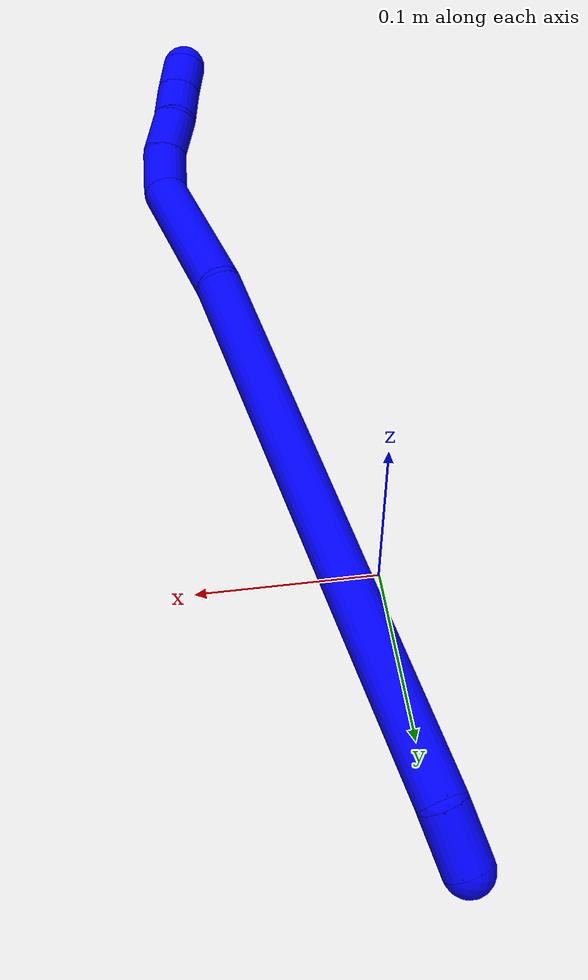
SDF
<sdf version="1.7">
 <world name="default">
  <plugin name="TubeGeneratorPlugin" filename="libtube_generator_plugin.so"/>
  <model name="photoneo_s_sensor">
   <static>1</static>
   <pose>0 0 2 1.57079 1.57079 3.14159</pose>
   <link name="link">
    <inertial><mass>0.1</mass></inertial>
    <sensor name="sensor" type="depth">
     <update_rate>30</update_rate>
     <camera>
      <horizontal_fov>1.22</horizontal_fov>
      <image><width>1920</width><height>1200</height><format>B8G8R8</format></image>
      <clip><near>0.1</near><far>4</far></clip>
      <depth_camera><output>points</output></depth_camera>
     </camera>
     <plugin name="camera_plugin" filename="libgazebo_ros_depth_camera.so">
      <baseline>0.2</baseline>
      <alwaysOn>1</alwaysOn>
      <updateRate>0.0</updateRate>
      <cameraName>camera_ir</cameraName>
      <imageTopicName>/camera/color/image_raw</imageTopicName>
      <cameraInfoTopicName>/camera/color/camera_info</cameraInfoTopicName>
      <depthImageTopicName>/camera/depth/image_raw</depthImageTopicName>
      <depthImageCameraInfoTopicName>/camera/depth/camera_info</depthImageCameraInfoTopicName>
      <pointCloudTopicName>/camera/depth/points</pointCloudTopicName>
      <frameName>fr_optical</frameName>
      <pointCloudCutoff>0.1</pointCloudCutoff>
      <pointCloudCutoffMax>2.0</pointCloudCutoffMax>
      <distortionK1>0</distortionK1>
      <distortionK2>0</distortionK2>
      <distortionK3>0</distortionK3>
      <distortionT1>0</distortionT1>
      <distortionT2>0</distortionT2>
      <CxPrime>0</CxPrime>
      <Cx>0</Cx>
      <Cy>0</Cy>
      <focalLength>0</focalLength>
      <hackBaseline>0</hackBaseline>
     </plugin>
    </sensor>
   </link>
  </model>
  <gravity>0 0 -9.8</gravity>
  <magnetic_field>6e-06 2.3e-05 -4.2e-05</magnetic_field>
  <atmosphere type="adiabatic"/>
  <physics name="default_physics" default="0" type="ode">
   <max_step_size>0.003</max_step_size>
   <real_time_factor>1</real_time_factor>
   <real_time_update_rate>1000</real_time_update_rate>
   <max_contacts>10000</max_contacts>
   <ode>
    <solver>
     <type>quick</type>
     <iters>100</iters>
     <sor>1.3</sor>
     <use_dynamic_moi_rescaling>0</use_dynamic_moi_rescaling>
    </solver>
    <constraints>
     <contact_max_correcting_vel>0</contact_max_correcting_vel>
     <contact_surface_layer>0.001</contact_surface_layer>
     <cfm>0</cfm>
     <erp>0.2</erp>
    </constraints>
   </ode>
  </physics>
  <scene><ambient>0.4 0.4 0.4 1</ambient><background>0.7 0.7 0.7 1</background><shadows>0</shadows></scene>
  <audio><device>default</device></audio>
  <spherical_coordinates>
   <surface_model>EARTH_WGS84</surface_model>
   <latitude_deg>0</latitude_deg>
   <longitude_deg>0</longitude_deg>
   <elevation>0</elevation>
   <heading_deg>0</heading_deg>
  </spherical_coordinates>
  <model name="bin">
   <static>1</static>
   <link name="bottom">
    <collision name="collision-bottom">
     <pose>0 0 -0.01 0 -0 0</pose>
     <geometry><box><size>0.8 0.6 0.02</size></box></geometry>
     <surface>
      <friction><ode><mu>100</mu><mu2>100</mu2></ode></friction>
      <contact><collide_bitmask>65535</collide_bitmask></contact>
     </surface>
    </collision>
   </link>
   <link name="west_wall">
    <collision name="collision-west_wall">
     <pose>-0.41 0 0.1 0 -0 0</pose>
     <geometry><box><size>0.02 0.6 0.2</size></box></geometry>
     <surface>
      <friction><ode><mu>100</mu><mu2>100</mu2></ode></friction>
      <contact><collide_bitmask>65535</collide_bitmask></contact>
     </surface>
    </collision>
   </link>
   <link name="east_wall">
    <collision name="collision-east_wall">
     <pose>0.41 0 0.1 0 -0 0</pose>
     <geometry><box><size>0.02 0.6 0.2</size></box></geometry>
     <surface>
      <friction><ode><mu>100</mu><mu2>100</mu2></ode></friction>
      <contact><collide_bitmask>65535</collide_bitmask></contact>
     </surface>
    </collision>
   </link>
   <link name="south_wall">
    <collision name="collision-south_wall">
     <pose>0 -0.31 0.1 0 -0 0</pose>
     <geometry><box><size>0.8 0.02 0.2</size></box></geometry>
     <surface>
      <friction><ode><mu>100</mu><mu2>100</mu2></ode></friction>
      <contact><collide_bitmask>65535</collide_bitmask></contact>
     </surface>
    </collision>
   </link>
   <link name="north_wall">
    <collision name="collision-north_wall">
     <pose>0 0.31 0.1 0 -0 0</pose>
     <geometry><box><size>0.8 0.02 0.2</size></box></geometry>
     <surface>
      <friction><ode><mu>100</mu><mu2>100</mu2></ode></friction>
      <contact><collide_bitmask>65535</collide_bitmask></contact>
     </surface>
    </collision>
   </link>
  </model>
  <model name="1">
   <static>0</static>
   <link name="1">
    <collision name="collision-cylinder-e_1_1_4">
     <pose>0.005635 -0.005232 0.013478 0.37031 0.37163 0.07039</pose>
     <geometry><cylinder><radius>0.0125</radius><length>0.031034</length></cylinder></geometry>
     <surface>
      <friction><ode><mu>1.16</mu><mu2>1.16</mu2><slip1>0</slip1><slip2>0</slip2></ode></friction>
      <contact><ode><kp>1e+06</kp><kd>1</kd><max_vel>0</max_vel><min_depth>0.001</min_depth></ode></contact>
     </surface>
    </collision>
    <visual name="visual-cylinder-e_1_1_4">
     <pose>0.005635 -0.005232 0.013478 0.37031 0.37163 0.07039</pose>
     <geometry><cylinder><radius>0.0125</radius><length>0.031034</length></cylinder></geometry>
     <material><ambient>0 0 1 1</ambient></material>
    </visual>
    <collision name="collision-cylinder-e_2_4_5">
     <pose>0.032445 -0.101905 0.136996 0.693339 0.146936 0.053165</pose>
     <geometry><cylinder><radius>0.0125</radius><length>0.289265</length></cylinder></geometry>
     <surface>
      <friction><ode><mu>1.16</mu><mu2>1.16</mu2><slip1>0</slip1><slip2>0</slip2></ode></friction>
      <contact><ode><kp>1e+06</kp><kd>1</kd><max_vel>0</max_vel><min_depth>0.001</min_depth></ode></contact>
     </surface>
    </collision>
    <visual name="visual-cylinder-e_2_4_5">
     <pose>0.032445 -0.101905 0.136996 0.693339 0.146936 0.053165</pose>
     <geometry><cylinder><radius>0.0125</radius><length>0.289265</length></cylinder></geometry>
     <material><ambient>0 0 1 1</ambient></material>
    </visual>
    <collision name="collision-cylinder-e_3_5_6">
     <pose>0.055052 -0.228371 0.272901 0.934748 0.032873 0.016591</pose>
     <geometry><cylinder><radius>0.0125</radius><length>0.08713</length></cylinder></geometry>
     <surface>
      <friction><ode><mu>1.16</mu><mu2>1.16</mu2><slip1>0</slip1><slip2>0</slip2></ode></friction>
      <contact><ode><kp>1e+06</kp><kd>1</kd><max_vel>0</max_vel><min_depth>0.001</min_depth></ode></contact>
     </surface>
    </collision>
    <visual name="visual-cylinder-e_3_5_6">
     <pose>0.055052 -0.228371 0.272901 0.934748 0.032873 0.016591</pose>
     <geometry><cylinder><radius>0.0125</radius><length>0.08713</length></cylinder></geometry>
     <material><ambient>0 0 1 1</ambient></material>
    </visual>
    <collision name="collision-cylinder-e_4_6_7">
     <pose>0.055449 -0.269512 0.310837 0.468827 -0.076313 -0.018232</pose>
     <geometry><cylinder><radius>0.0125</radius><length>0.027141</length></cylinder></geometry>
     <surface>
      <friction><ode><mu>1.16</mu><mu2>1.16</mu2><slip1>0</slip1><slip2>0</slip2></ode></friction>
      <contact><ode><kp>1e+06</kp><kd>1</kd><max_vel>0</max_vel><min_depth>0.001</min_depth></ode></contact>
     </surface>
    </collision>
    <visual name="visual-cylinder-e_4_6_7">
     <pose>0.055449 -0.269512 0.310837 0.468827 -0.076313 -0.018232</pose>
     <geometry><cylinder><radius>0.0125</radius><length>0.027141</length></cylinder></geometry>
     <material><ambient>0 0 1 1</ambient></material>
    </visual>
    <collision name="collision-cylinder-e_5_7_8">
     <pose>0.051041 -0.278678 0.334357 0.260541 -0.277391 -0.036572</pose>
     <geometry><cylinder><radius>0.0125</radius><length>0.024639</length></cylinder></geometry>
     <surface>
      <friction><ode><mu>1.16</mu><mu2>1.16</mu2><slip1>0</slip1><slip2>0</slip2></ode></friction>
      <contact><ode><kp>1e+06</kp><kd>1</kd><max_vel>0</max_vel><min_depth>0.001</min_depth></ode></contact>
     </surface>
    </collision>
    <visual name="visual-cylinder-e_5_7_8">
     <pose>0.051041 -0.278678 0.334357 0.260541 -0.277391 -0.036572</pose>
     <geometry><cylinder><radius>0.0125</radius><length>0.024639</length></cylinder></geometry>
     <material><ambient>0 0 1 1</ambient></material>
    </visual>
    <collision name="collision-cylinder-e_6_8_9">
     <pose>0.045213 -0.286358 0.354682 0.480592 -0.240485 -0.059195</pose>
     <geometry><cylinder><radius>0.0125</radius><length>0.020613</length></cylinder></geometry>
     <surface>
      <friction><ode><mu>1.16</mu><mu2>1.16</mu2><slip1>0</slip1><slip2>0</slip2></ode></friction>
      <contact><ode><kp>1e+06</kp><kd>1</kd><max_vel>0</max_vel><min_depth>0.001</min_depth></ode></contact>
     </surface>
    </collision>
    <visual name="visual-cylinder-e_6_8_9">
     <pose>0.045213 -0.286358 0.354682 0.480592 -0.240485 -0.059195</pose>
     <geometry><cylinder><radius>0.0125</radius><length>0.020613</length></cylinder></geometry>
     <material><ambient>0 0 1 1</ambient></material>
    </visual>
    <collision name="collision-cylinder-e_7_9_2">
     <pose>0.040088 -0.294848 0.372487 0.408235 -0.267844 -0.055763</pose>
     <geometry><cylinder><radius>0.0125</radius><length>0.020177</length></cylinder></geometry>
     <surface>
      <friction><ode><mu>1.16</mu><mu2>1.16</mu2><slip1>0</slip1><slip2>0</slip2></ode></friction>
      <contact><ode><kp>1e+06</kp><kd>1</kd><max_vel>0</max_vel><min_depth>0.001</min_depth></ode></contact>
     </surface>
    </collision>
    <visual name="visual-cylinder-e_7_9_2">
     <pose>0.040088 -0.294848 0.372487 0.408235 -0.267844 -0.055763</pose>
     <geometry><cylinder><radius>0.0125</radius><length>0.020177</length></cylinder></geometry>
     <material><ambient>0 0 1 1</ambient></material>
    </visual>
    <collision name="collision-sphere-2">
     <pose>0.037418 -0.29871 0.381416 0 -0 0</pose>
     <geometry><sphere><radius>0.0125</radius></sphere></geometry>
     <surface>
      <friction><ode><mu>1.16</mu><mu2>1.16</mu2><slip1>0</slip1><slip2>0</slip2></ode></friction>
      <contact><ode><kp>1e+06</kp><kd>1</kd><max_vel>0</max_vel><min_depth>0.001</min_depth></ode></contact>
     </surface>
    </collision>
    <visual name="visual-sphere-2">
     <pose>0.037418 -0.29871 0.381416 0 -0 0</pose>
     <geometry><sphere><radius>0.0125</radius></sphere></geometry>
     <material><ambient>0 0 1 1</ambient></material>
    </visual>
    <collision name="collision-sphere-9">
     <pose>0.042758 -0.290986 0.363558 0 -0 0</pose>
     <geometry><sphere><radius>0.0125</radius></sphere></geometry>
     <surface>
      <friction><ode><mu>1.16</mu><mu2>1.16</mu2><slip1>0</slip1><slip2>0</slip2></ode></friction>
      <contact><ode><kp>1e+06</kp><kd>1</kd><max_vel>0</max_vel><min_depth>0.001</min_depth></ode></contact>
     </surface>
    </collision>
    <visual name="visual-sphere-9">
     <pose>0.042758 -0.290986 0.363558 0 -0 0</pose>
     <geometry><sphere><radius>0.0125</radius></sphere></geometry>
     <material><ambient>0 0 1 1</ambient></material>
    </visual>
    <collision name="collision-sphere-4">
     <pose>0.01127 -0.010465 0.026956 0 -0 0</pose>
     <geometry><sphere><radius>0.0125</radius></sphere></geometry>
     <surface>
      <friction><ode><mu>1.16</mu><mu2>1.16</mu2><slip1>0</slip1><slip2>0</slip2></ode></friction>
      <contact><ode><kp>1e+06</kp><kd>1</kd><max_vel>0</max_vel><min_depth>0.001</min_depth></ode></contact>
     </surface>
    </collision>
    <visual name="visual-sphere-4">
     <pose>0.01127 -0.010465 0.026956 0 -0 0</pose>
     <geometry><sphere><radius>0.0125</radius></sphere></geometry>
     <material><ambient>0 0 1 1</ambient></material>
    </visual>
    <collision name="collision-sphere-1">
     <geometry><sphere><radius>0.0125</radius></sphere></geometry>
     <surface>
      <friction><ode><mu>1.16</mu><mu2>1.16</mu2><slip1>0</slip1><slip2>0</slip2></ode></friction>
      <contact><ode><kp>1e+06</kp><kd>1</kd><max_vel>0</max_vel><min_depth>0.001</min_depth></ode></contact>
     </surface>
    </collision>
    <visual name="visual-sphere-1">
     <geometry><sphere><radius>0.0125</radius></sphere></geometry>
     <material><ambient>0 0 1 1</ambient></material>
    </visual>
    <collision name="collision-sphere-8">
     <pose>0.047667 -0.281731 0.345806 0 -0 0</pose>
     <geometry><sphere><radius>0.0125</radius></sphere></geometry>
     <surface>
      <friction><ode><mu>1.16</mu><mu2>1.16</mu2><slip1>0</slip1><slip2>0</slip2></ode></friction>
      <contact><ode><kp>1e+06</kp><kd>1</kd><max_vel>0</max_vel><min_depth>0.001</min_depth></ode></contact>
     </surface>
    </collision>
    <visual name="visual-sphere-8">
     <pose>0.047667 -0.281731 0.345806 0 -0 0</pose>
     <geometry><sphere><radius>0.0125</radius></sphere></geometry>
     <material><ambient>0 0 1 1</ambient></material>
    </visual>
    <collision name="collision-sphere-5">
     <pose>0.05362 -0.193344 0.247037 0 -0 0</pose>
     <geometry><sphere><radius>0.0125</radius></sphere></geometry>
     <surface>
      <friction><ode><mu>1.16</mu><mu2>1.16</mu2><slip1>0</slip1><slip2>0</slip2></ode></friction>
      <contact><ode><kp>1e+06</kp><kd>1</kd><max_vel>0</max_vel><min_depth>0.001</min_depth></ode></contact>
     </surface>
    </collision>
    <visual name="visual-sphere-5">
     <pose>0.05362 -0.193344 0.247037 0 -0 0</pose>
     <geometry><sphere><radius>0.0125</radius></sphere></geometry>
     <material><ambient>0 0 1 1</ambient></material>
    </visual>
    <collision name="collision-sphere-6">
     <pose>0.056484 -0.263398 0.298766 0 -0 0</pose>
     <geometry><sphere><radius>0.0125</radius></sphere></geometry>
     <surface>
      <friction><ode><mu>1.16</mu><mu2>1.16</mu2><slip1>0</slip1><slip2>0</slip2></ode></friction>
      <contact><ode><kp>1e+06</kp><kd>1</kd><max_vel>0</max_vel><min_depth>0.001</min_depth></ode></contact>
     </surface>
    </collision>
    <visual name="visual-sphere-6">
     <pose>0.056484 -0.263398 0.298766 0 -0 0</pose>
     <geometry><sphere><radius>0.0125</radius></sphere></geometry>
     <material><ambient>0 0 1 1</ambient></material>
    </visual>
    <collision name="collision-sphere-7">
     <pose>0.054415 -0.275626 0.322908 0 -0 0</pose>
     <geometry><sphere><radius>0.0125</radius></sphere></geometry>
     <surface>
      <friction><ode><mu>1.16</mu><mu2>1.16</mu2><slip1>0</slip1><slip2>0</slip2></ode></friction>
      <contact><ode><kp>1e+06</kp><kd>1</kd><max_vel>0</max_vel><min_depth>0.001</min_depth></ode></contact>
     </surface>
    </collision>
    <visual name="visual-sphere-7">
     <pose>0.054415 -0.275626 0.322908 0 -0 0</pose>
     <geometry><sphere><radius>0.0125</radius></sphere></geometry>
     <material><ambient>0 0 1 1</ambient></material>
    </visual>
    <inertial>
     <pose>0.03772 -0.151142 0.190652 0 -0 0</pose>
     <mass>0.5</mass>
     <inertia>
      <ixx>0.002184</ixx>
      <ixy>0</ixy>
      <ixz>0</ixz>
      <iyy>0.001698</iyy>
      <iyz>0</iyz>
      <izz>0.001065</izz>
     </inertia>
    </inertial>
   </link>
   <pose>-0.008566 0.1707 0.011722 0.630087 -0.487348 0.244528</pose>
  </model>
 </world>
</sdf>
